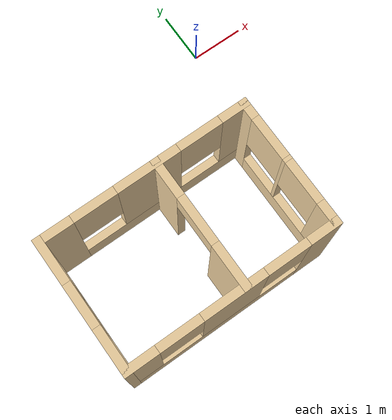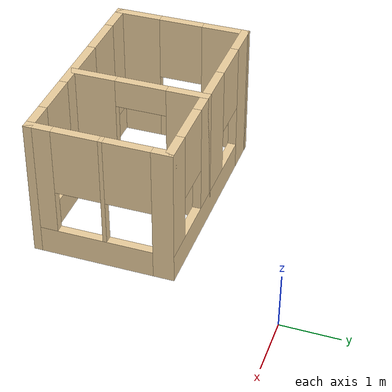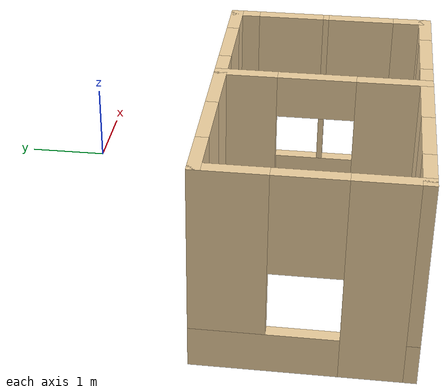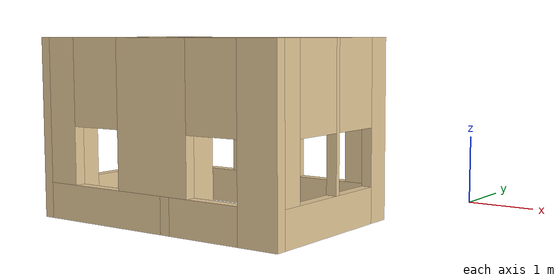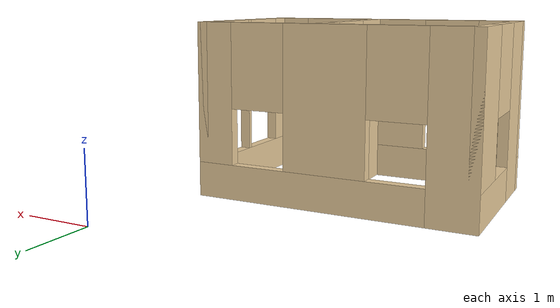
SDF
<?xml version='1.0'?>
<sdf version='1.6'>
  <model name='house'>
    <pose frame=''>-2.415 -3.135 0 0 -0 0</pose>
    <link name='Wall_0'>
      <pose frame=''>-1.925 0 0 0 -0 1.5708</pose>
      <visual name='Wall_0_Visual_0'>
        <pose frame=''>-0.8225 0 1.25 0 -0 0</pose>
        <geometry>
          <box>
            <size>0.855 0.15 2.5</size>
          </box>
        </geometry>
        <material>
          <script>
            <uri>file://media/materials/scripts/gazebo.material</uri>
            <name>Gazebo/Grey</name>
          </script>
          <ambient>0.921569 0.807843 0.615686 1</ambient>
        </material>
        <meta>
          <layer>0</layer>
        </meta>
      </visual>
      <collision name='Wall_0_Collision_0'>
        <geometry>
          <box>
            <size>0.855 0.15 2.5</size>
          </box>
        </geometry>
        <pose frame=''>-0.8225 0 1.25 0 -0 0</pose>
      </collision>
      <visual name='Wall_0_Visual_1'>
        <pose frame=''>0.4275 0 0.25 0 -0 0</pose>
        <geometry>
          <box>
            <size>1.645 0.15 0.5</size>
          </box>
        </geometry>
        <material>
          <script>
            <uri>file://media/materials/scripts/gazebo.material</uri>
            <name>Gazebo/Grey</name>
          </script>
          <ambient>0.921569 0.807843 0.615686 1</ambient>
        </material>
        <meta>
          <layer>0</layer>
        </meta>
      </visual>
      <collision name='Wall_0_Collision_1'>
        <geometry>
          <box>
            <size>1.645 0.15 0.5</size>
          </box>
        </geometry>
        <pose frame=''>0.4275 0 0.25 0 -0 0</pose>
      </collision>
      <visual name='Wall_0_Visual_2'>
        <pose frame=''>0.8275 0 1.5 0 -0 0</pose>
        <geometry>
          <box>
            <size>0.845 0.15 2</size>
          </box>
        </geometry>
        <material>
          <script>
            <uri>file://media/materials/scripts/gazebo.material</uri>
            <name>Gazebo/Grey</name>
          </script>
          <ambient>0.921569 0.807843 0.615686 1</ambient>
        </material>
        <meta>
          <layer>0</layer>
        </meta>
      </visual>
      <collision name='Wall_0_Collision_2'>
        <geometry>
          <box>
            <size>0.845 0.15 2</size>
          </box>
        </geometry>
        <pose frame=''>0.8275 0 1.5 0 -0 0</pose>
      </collision>
      <visual name='Wall_0_Visual_3'>
        <pose frame=''>0.005 0 1.9 0 -0 0</pose>
        <geometry>
          <box>
            <size>0.8 0.15 1.2</size>
          </box>
        </geometry>
        <material>
          <script>
            <uri>file://media/materials/scripts/gazebo.material</uri>
            <name>Gazebo/Grey</name>
          </script>
          <ambient>0.921569 0.807843 0.615686 1</ambient>
        </material>
        <meta>
          <layer>0</layer>
        </meta>
      </visual>
      <collision name='Wall_0_Collision_3'>
        <geometry>
          <box>
            <size>0.8 0.15 1.2</size>
          </box>
        </geometry>
        <pose frame=''>0.005 0 1.9 0 -0 0</pose>
      </collision>
    </link>
    <link name='Wall_1'>
      <pose frame=''>0 1.175 0 0 -0 0</pose>
      <visual name='Wall_1_Visual_0'>
        <pose frame=''>-1.6625 0 1.25 0 -0 0</pose>
        <geometry>
          <box>
            <size>0.675 0.15 2.5</size>
          </box>
        </geometry>
        <material>
          <script>
            <uri>file://media/materials/scripts/gazebo.material</uri>
            <name>Gazebo/Grey</name>
          </script>
          <ambient>0.921569 0.807843 0.615686 1</ambient>
        </material>
        <meta>
          <layer>0</layer>
        </meta>
      </visual>
      <collision name='Wall_1_Collision_0'>
        <geometry>
          <box>
            <size>0.675 0.15 2.5</size>
          </box>
        </geometry>
        <pose frame=''>-1.6625 0 1.25 0 -0 0</pose>
      </collision>
      <visual name='Wall_1_Visual_1'>
        <pose frame=''>0.3375 0 0.25 0 -0 0</pose>
        <geometry>
          <box>
            <size>3.325 0.15 0.5</size>
          </box>
        </geometry>
        <material>
          <script>
            <uri>file://media/materials/scripts/gazebo.material</uri>
            <name>Gazebo/Grey</name>
          </script>
          <ambient>0.921569 0.807843 0.615686 1</ambient>
        </material>
        <meta>
          <layer>0</layer>
        </meta>
      </visual>
      <collision name='Wall_1_Collision_1'>
        <geometry>
          <box>
            <size>3.325 0.15 0.5</size>
          </box>
        </geometry>
        <pose frame=''>0.3375 0 0.25 0 -0 0</pose>
      </collision>
      <visual name='Wall_1_Visual_2'>
        <pose frame=''>0.065 0 1.5 0 -0 0</pose>
        <geometry>
          <box>
            <size>1.18 0.15 2</size>
          </box>
        </geometry>
        <material>
          <script>
            <uri>file://media/materials/scripts/gazebo.material</uri>
            <name>Gazebo/Grey</name>
          </script>
          <ambient>0.921569 0.807843 0.615686 1</ambient>
        </material>
        <meta>
          <layer>0</layer>
        </meta>
      </visual>
      <collision name='Wall_1_Collision_2'>
        <geometry>
          <box>
            <size>1.18 0.15 2</size>
          </box>
        </geometry>
        <pose frame=''>0.065 0 1.5 0 -0 0</pose>
      </collision>
      <visual name='Wall_1_Visual_3'>
        <pose frame=''>1.7275 0 1.5 0 -0 0</pose>
        <geometry>
          <box>
            <size>0.545 0.15 2</size>
          </box>
        </geometry>
        <material>
          <script>
            <uri>file://media/materials/scripts/gazebo.material</uri>
            <name>Gazebo/Grey</name>
          </script>
          <ambient>0.921569 0.807843 0.615686 1</ambient>
        </material>
        <meta>
          <layer>0</layer>
        </meta>
      </visual>
      <collision name='Wall_1_Collision_3'>
        <geometry>
          <box>
            <size>0.545 0.15 2</size>
          </box>
        </geometry>
        <pose frame=''>1.7275 0 1.5 0 -0 0</pose>
      </collision>
      <visual name='Wall_1_Visual_4'>
        <pose frame=''>-0.925 0 1.9 0 -0 0</pose>
        <geometry>
          <box>
            <size>0.8 0.15 1.2</size>
          </box>
        </geometry>
        <material>
          <script>
            <uri>file://media/materials/scripts/gazebo.material</uri>
            <name>Gazebo/Grey</name>
          </script>
          <ambient>0.921569 0.807843 0.615686 1</ambient>
        </material>
        <meta>
          <layer>0</layer>
        </meta>
      </visual>
      <collision name='Wall_1_Collision_4'>
        <geometry>
          <box>
            <size>0.8 0.15 1.2</size>
          </box>
        </geometry>
        <pose frame=''>-0.925 0 1.9 0 -0 0</pose>
      </collision>
      <visual name='Wall_1_Visual_5'>
        <pose frame=''>1.055 0 1.9 0 -0 0</pose>
        <geometry>
          <box>
            <size>0.8 0.15 1.2</size>
          </box>
        </geometry>
        <material>
          <script>
            <uri>file://media/materials/scripts/gazebo.material</uri>
            <name>Gazebo/Grey</name>
          </script>
          <ambient>0.921569 0.807843 0.615686 1</ambient>
        </material>
        <meta>
          <layer>0</layer>
        </meta>
      </visual>
      <collision name='Wall_1_Collision_5'>
        <geometry>
          <box>
            <size>0.8 0.15 1.2</size>
          </box>
        </geometry>
        <pose frame=''>1.055 0 1.9 0 -0 0</pose>
      </collision>
    </link>
    <link name='Wall_3'>
      <pose frame=''>0 -1.175 0 0 -0 3.14159</pose>
      <visual name='Wall_3_Visual_0'>
        <pose frame=''>-1.7025 0 1.25 0 -0 0</pose>
        <geometry>
          <box>
            <size>0.595 0.15 2.5</size>
          </box>
        </geometry>
        <material>
          <script>
            <uri>file://media/materials/scripts/gazebo.material</uri>
            <name>Gazebo/Grey</name>
          </script>
          <ambient>0.921569 0.807843 0.615686 1</ambient>
        </material>
        <meta>
          <layer>0</layer>
        </meta>
      </visual>
      <collision name='Wall_3_Collision_0'>
        <geometry>
          <box>
            <size>0.595 0.15 2.5</size>
          </box>
        </geometry>
        <pose frame=''>-1.7025 0 1.25 0 -0 0</pose>
      </collision>
      <visual name='Wall_3_Visual_1'>
        <pose frame=''>0.2975 0 0.25 0 -0 0</pose>
        <geometry>
          <box>
            <size>3.405 0.15 0.5</size>
          </box>
        </geometry>
        <material>
          <script>
            <uri>file://media/materials/scripts/gazebo.material</uri>
            <name>Gazebo/Grey</name>
          </script>
          <ambient>0.921569 0.807843 0.615686 1</ambient>
        </material>
        <meta>
          <layer>0</layer>
        </meta>
      </visual>
      <collision name='Wall_3_Collision_1'>
        <geometry>
          <box>
            <size>3.405 0.15 0.5</size>
          </box>
        </geometry>
        <pose frame=''>0.2975 0 0.25 0 -0 0</pose>
      </collision>
      <visual name='Wall_3_Visual_2'>
        <pose frame=''>-0.015 0 1.5 0 -0 0</pose>
        <geometry>
          <box>
            <size>1.18 0.15 2</size>
          </box>
        </geometry>
        <material>
          <script>
            <uri>file://media/materials/scripts/gazebo.material</uri>
            <name>Gazebo/Grey</name>
          </script>
          <ambient>0.921569 0.807843 0.615686 1</ambient>
        </material>
        <meta>
          <layer>0</layer>
        </meta>
      </visual>
      <collision name='Wall_3_Collision_2'>
        <geometry>
          <box>
            <size>1.18 0.15 2</size>
          </box>
        </geometry>
        <pose frame=''>-0.015 0 1.5 0 -0 0</pose>
      </collision>
      <visual name='Wall_3_Visual_3'>
        <pose frame=''>1.6875 0 1.5 0 -0 0</pose>
        <geometry>
          <box>
            <size>0.625 0.15 2</size>
          </box>
        </geometry>
        <material>
          <script>
            <uri>file://media/materials/scripts/gazebo.material</uri>
            <name>Gazebo/Grey</name>
          </script>
          <ambient>0.921569 0.807843 0.615686 1</ambient>
        </material>
        <meta>
          <layer>0</layer>
        </meta>
      </visual>
      <collision name='Wall_3_Collision_3'>
        <geometry>
          <box>
            <size>0.625 0.15 2</size>
          </box>
        </geometry>
        <pose frame=''>1.6875 0 1.5 0 -0 0</pose>
      </collision>
      <visual name='Wall_3_Visual_4'>
        <pose frame=''>-1.005 0 1.9 0 -0 0</pose>
        <geometry>
          <box>
            <size>0.8 0.15 1.2</size>
          </box>
        </geometry>
        <material>
          <script>
            <uri>file://media/materials/scripts/gazebo.material</uri>
            <name>Gazebo/Grey</name>
          </script>
          <ambient>0.921569 0.807843 0.615686 1</ambient>
        </material>
        <meta>
          <layer>0</layer>
        </meta>
      </visual>
      <collision name='Wall_3_Collision_4'>
        <geometry>
          <box>
            <size>0.8 0.15 1.2</size>
          </box>
        </geometry>
        <pose frame=''>-1.005 0 1.9 0 -0 0</pose>
      </collision>
      <visual name='Wall_3_Visual_5'>
        <pose frame=''>0.975 0 1.9 0 -0 0</pose>
        <geometry>
          <box>
            <size>0.8 0.15 1.2</size>
          </box>
        </geometry>
        <material>
          <script>
            <uri>file://media/materials/scripts/gazebo.material</uri>
            <name>Gazebo/Grey</name>
          </script>
          <ambient>0.921569 0.807843 0.615686 1</ambient>
        </material>
        <meta>
          <layer>0</layer>
        </meta>
      </visual>
      <collision name='Wall_3_Collision_5'>
        <geometry>
          <box>
            <size>0.8 0.15 1.2</size>
          </box>
        </geometry>
        <pose frame=''>0.975 0 1.9 0 -0 0</pose>
      </collision>
    </link>
    <link name='Wall_6'>
      <pose frame=''>0.235 0 0 0 -0 -1.5708</pose>
      <visual name='Wall_6_Visual_0'>
        <pose frame=''>-0.8825 0 1.25 0 -0 0</pose>
        <geometry>
          <box>
            <size>0.735 0.15 2.5</size>
          </box>
        </geometry>
        <material>
          <script>
            <uri>file://media/materials/scripts/gazebo.material</uri>
            <name>Gazebo/Grey</name>
          </script>
          <ambient>0.921569 0.807843 0.615686 1</ambient>
        </material>
        <meta>
          <layer>0</layer>
        </meta>
      </visual>
      <collision name='Wall_6_Collision_0'>
        <geometry>
          <box>
            <size>0.735 0.15 2.5</size>
          </box>
        </geometry>
        <pose frame=''>-0.8825 0 1.25 0 -0 0</pose>
      </collision>
      <visual name='Wall_6_Visual_1'>
        <pose frame=''>0.8175 0 1.25 0 -0 0</pose>
        <geometry>
          <box>
            <size>0.865 0.15 2.5</size>
          </box>
        </geometry>
        <material>
          <script>
            <uri>file://media/materials/scripts/gazebo.material</uri>
            <name>Gazebo/Grey</name>
          </script>
          <ambient>0.921569 0.807843 0.615686 1</ambient>
        </material>
        <meta>
          <layer>0</layer>
        </meta>
      </visual>
      <collision name='Wall_6_Collision_1'>
        <geometry>
          <box>
            <size>0.865 0.15 2.5</size>
          </box>
        </geometry>
        <pose frame=''>0.8175 0 1.25 0 -0 0</pose>
      </collision>
      <visual name='Wall_6_Visual_2'>
        <pose frame=''>-0.065 0 2.25 0 -0 0</pose>
        <geometry>
          <box>
            <size>0.9 0.15 0.5</size>
          </box>
        </geometry>
        <material>
          <script>
            <uri>file://media/materials/scripts/gazebo.material</uri>
            <name>Gazebo/Grey</name>
          </script>
          <ambient>0.921569 0.807843 0.615686 1</ambient>
        </material>
        <meta>
          <layer>0</layer>
        </meta>
      </visual>
      <collision name='Wall_6_Collision_2'>
        <geometry>
          <box>
            <size>0.9 0.15 0.5</size>
          </box>
        </geometry>
        <pose frame=''>-0.065 0 2.25 0 -0 0</pose>
      </collision>
    </link>
    <link name='Wall_8'>
      <pose frame=''>1.925 0 0 0 -0 -1.5708</pose>
      <visual name='Wall_8_Visual_0'>
        <pose frame=''>-1.0675 0 1.25 0 -0 0</pose>
        <geometry>
          <box>
            <size>0.365 0.15 2.5</size>
          </box>
        </geometry>
        <material>
          <script>
            <uri>file://media/materials/scripts/gazebo.material</uri>
            <name>Gazebo/Grey</name>
          </script>
          <ambient>0.921569 0.807843 0.615686 1</ambient>
        </material>
        <meta>
          <layer>0</layer>
        </meta>
      </visual>
      <collision name='Wall_8_Collision_0'>
        <geometry>
          <box>
            <size>0.365 0.15 2.5</size>
          </box>
        </geometry>
        <pose frame=''>-1.0675 0 1.25 0 -0 0</pose>
      </collision>
      <visual name='Wall_8_Visual_1'>
        <pose frame=''>0.1825 0 0.25 0 -0 0</pose>
        <geometry>
          <box>
            <size>2.135 0.15 0.5</size>
          </box>
        </geometry>
        <material>
          <script>
            <uri>file://media/materials/scripts/gazebo.material</uri>
            <name>Gazebo/Grey</name>
          </script>
          <ambient>0.921569 0.807843 0.615686 1</ambient>
        </material>
        <meta>
          <layer>0</layer>
        </meta>
      </visual>
      <collision name='Wall_8_Collision_1'>
        <geometry>
          <box>
            <size>2.135 0.15 0.5</size>
          </box>
        </geometry>
        <pose frame=''>0.1825 0 0.25 0 -0 0</pose>
      </collision>
      <visual name='Wall_8_Visual_2'>
        <pose frame=''>-0.05 0 1.5 0 -0 0</pose>
        <geometry>
          <box>
            <size>0.07 0.15 2</size>
          </box>
        </geometry>
        <material>
          <script>
            <uri>file://media/materials/scripts/gazebo.material</uri>
            <name>Gazebo/Grey</name>
          </script>
          <ambient>0.921569 0.807843 0.615686 1</ambient>
        </material>
        <meta>
          <layer>0</layer>
        </meta>
      </visual>
      <collision name='Wall_8_Collision_2'>
        <geometry>
          <box>
            <size>0.07 0.15 2</size>
          </box>
        </geometry>
        <pose frame=''>-0.05 0 1.5 0 -0 0</pose>
      </collision>
      <visual name='Wall_8_Visual_3'>
        <pose frame=''>1.0175 0 1.5 0 -0 0</pose>
        <geometry>
          <box>
            <size>0.465 0.15 2</size>
          </box>
        </geometry>
        <material>
          <script>
            <uri>file://media/materials/scripts/gazebo.material</uri>
            <name>Gazebo/Grey</name>
          </script>
          <ambient>0.921569 0.807843 0.615686 1</ambient>
        </material>
        <meta>
          <layer>0</layer>
        </meta>
      </visual>
      <collision name='Wall_8_Collision_3'>
        <geometry>
          <box>
            <size>0.465 0.15 2</size>
          </box>
        </geometry>
        <pose frame=''>1.0175 0 1.5 0 -0 0</pose>
      </collision>
      <visual name='Wall_8_Visual_4'>
        <pose frame=''>-0.485 0 1.9 0 -0 0</pose>
        <geometry>
          <box>
            <size>0.8 0.15 1.2</size>
          </box>
        </geometry>
        <material>
          <script>
            <uri>file://media/materials/scripts/gazebo.material</uri>
            <name>Gazebo/Grey</name>
          </script>
          <ambient>0.921569 0.807843 0.615686 1</ambient>
        </material>
        <meta>
          <layer>0</layer>
        </meta>
      </visual>
      <collision name='Wall_8_Collision_4'>
        <geometry>
          <box>
            <size>0.8 0.15 1.2</size>
          </box>
        </geometry>
        <pose frame=''>-0.485 0 1.9 0 -0 0</pose>
      </collision>
      <visual name='Wall_8_Visual_5'>
        <pose frame=''>0.385 0 1.9 0 -0 0</pose>
        <geometry>
          <box>
            <size>0.8 0.15 1.2</size>
          </box>
        </geometry>
        <material>
          <script>
            <uri>file://media/materials/scripts/gazebo.material</uri>
            <name>Gazebo/Grey</name>
          </script>
          <ambient>0.921569 0.807843 0.615686 1</ambient>
        </material>
        <meta>
          <layer>0</layer>
        </meta>
      </visual>
      <collision name='Wall_8_Collision_5'>
        <geometry>
          <box>
            <size>0.8 0.15 1.2</size>
          </box>
        </geometry>
        <pose frame=''>0.385 0 1.9 0 -0 0</pose>
      </collision>
    </link>
    <static>1</static>
  </model>
</sdf>
